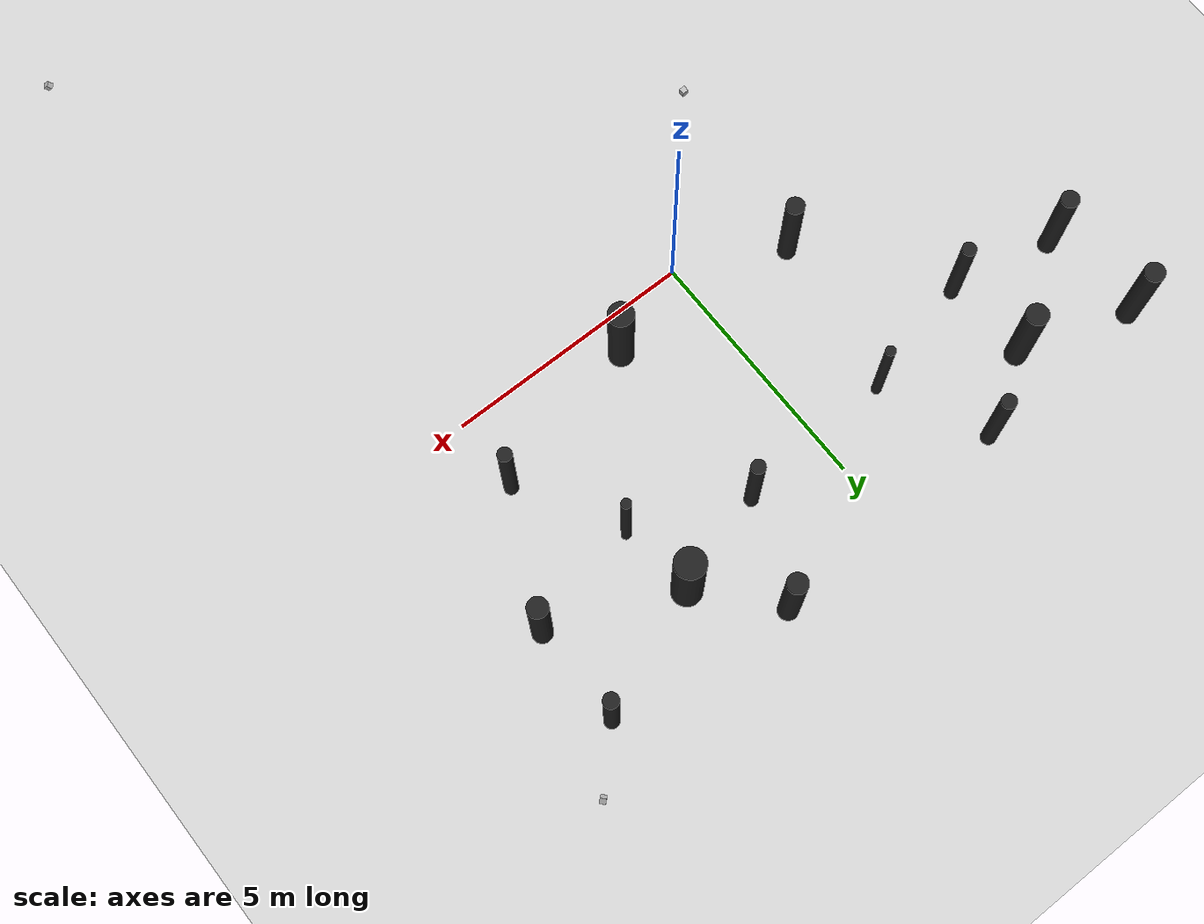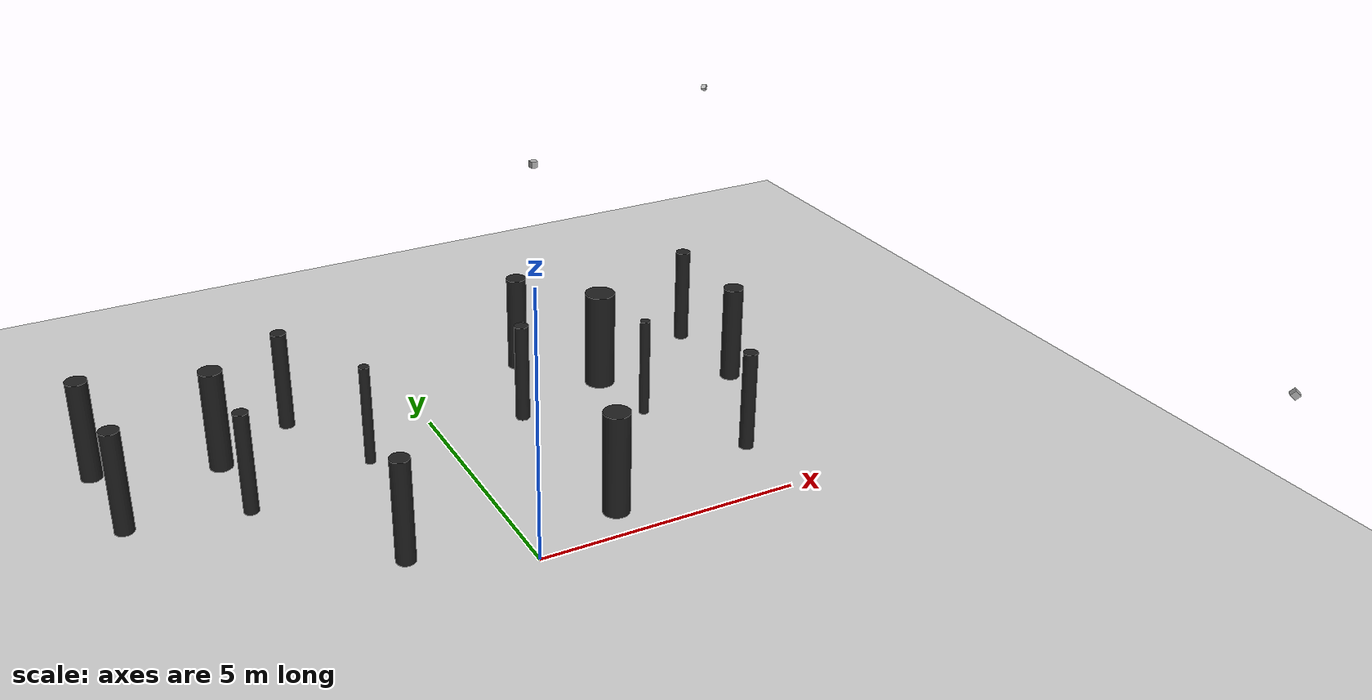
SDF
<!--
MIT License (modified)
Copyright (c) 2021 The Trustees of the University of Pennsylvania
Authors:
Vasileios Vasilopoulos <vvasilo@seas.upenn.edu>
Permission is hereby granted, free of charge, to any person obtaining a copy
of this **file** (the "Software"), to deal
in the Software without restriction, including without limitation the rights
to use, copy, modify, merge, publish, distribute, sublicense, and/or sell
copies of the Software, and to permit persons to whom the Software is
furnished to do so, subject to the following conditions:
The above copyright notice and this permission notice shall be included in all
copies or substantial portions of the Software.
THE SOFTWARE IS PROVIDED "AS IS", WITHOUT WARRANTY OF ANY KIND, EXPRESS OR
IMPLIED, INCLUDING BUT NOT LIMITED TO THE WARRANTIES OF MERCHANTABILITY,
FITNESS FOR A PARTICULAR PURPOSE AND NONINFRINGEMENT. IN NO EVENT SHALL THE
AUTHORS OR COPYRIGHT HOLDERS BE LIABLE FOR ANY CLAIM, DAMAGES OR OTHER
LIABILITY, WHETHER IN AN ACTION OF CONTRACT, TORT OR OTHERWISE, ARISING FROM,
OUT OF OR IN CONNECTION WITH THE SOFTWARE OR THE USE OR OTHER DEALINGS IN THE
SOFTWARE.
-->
<sdf version="1.6">
 <world name="default">
  <model name="ground_plane">
   <static>1</static>
   <link name="link">
    <collision name="collision">
     <geometry><plane><normal>0 0 1</normal><size>100 100</size></plane></geometry>
     <surface><friction><ode><mu>100</mu><mu2>50</mu2></ode></friction></surface>
    </collision>
    <visual name="visual">
     <cast_shadows>0</cast_shadows>
     <geometry><plane><normal>0 0 1</normal><size>100 100</size></plane></geometry>
     <material>
      <script><uri>file://media/materials/scripts/gazebo.material</uri><name>Gazebo/Grey</name></script>
     </material>
    </visual>
   </link>
  </model>
  <model name="cylinder_15">
   <link name="link_0">
    <pose>5 1.5 1 0 -0 0</pose>
    <visual name="visual">
     <geometry><cylinder><radius>0.14</radius><length>2</length></cylinder></geometry>
     <material>
      <lighting>1</lighting>
      <script><uri>file://media/materials/scripts/gazebo.material</uri><name>Gazebo/Black</name></script>
      <shader type="pixel"/>
     </material>
    </visual>
    <collision name="collision">
     <geometry><cylinder><radius>0.14</radius><length>2</length></cylinder></geometry>
    </collision>
   </link>
   <static>1</static>
  </model>
  <model name="cylinder_16">
   <link name="link_0">
    <pose>1.7 4.4 1 0 -0 0</pose>
    <visual name="visual">
     <geometry><cylinder><radius>0.14</radius><length>2</length></cylinder></geometry>
     <material>
      <lighting>1</lighting>
      <script><uri>file://media/materials/scripts/gazebo.material</uri><name>Gazebo/Black</name></script>
      <shader type="pixel"/>
     </material>
    </visual>
    <collision name="collision">
     <geometry><cylinder><radius>0.14</radius><length>2</length></cylinder></geometry>
    </collision>
   </link>
   <static>1</static>
  </model>
  <model name="cylinder_17">
   <link name="link_0">
    <pose>2.5 6.4 1 0 -0 0</pose>
    <visual name="visual">
     <geometry><cylinder><radius>0.2</radius><length>2</length></cylinder></geometry>
     <material>
      <lighting>1</lighting>
      <script><uri>file://media/materials/scripts/gazebo.material</uri><name>Gazebo/Black</name></script>
      <shader type="pixel"/>
     </material>
    </visual>
    <collision name="collision">
     <geometry><cylinder><radius>0.2</radius><length>2</length></cylinder></geometry>
    </collision>
   </link>
   <static>1</static>
  </model>
  <model name="cylinder_18">
   <link name="link_0">
    <pose>3.7 5 1 0 -0 0</pose>
    <visual name="visual">
     <geometry><cylinder><radius>0.3</radius><length>2</length></cylinder></geometry>
     <material>
      <lighting>1</lighting>
      <script><uri>file://media/materials/scripts/gazebo.material</uri><name>Gazebo/Black</name></script>
      <shader type="pixel"/>
     </material>
    </visual>
    <collision name="collision">
     <geometry><cylinder><radius>0.3</radius><length>2</length></cylinder></geometry>
    </collision>
   </link>
   <static>1</static>
  </model>
  <model name="cylinder_19">
   <link name="link_0">
    <pose>3.9 3.5 1 0 -0 0</pose>
    <visual name="visual">
     <geometry><cylinder><radius>0.1</radius><length>2</length></cylinder></geometry>
     <material>
      <lighting>1</lighting>
      <script><uri>file://media/materials/scripts/gazebo.material</uri><name>Gazebo/Black</name></script>
      <shader type="pixel"/>
     </material>
    </visual>
    <collision name="collision">
     <geometry><cylinder><radius>0.1</radius><length>2</length></cylinder></geometry>
    </collision>
   </link>
   <static>1</static>
  </model>
  <model name="cylinder_20">
   <link name="link_0">
    <pose>6.2 6 1 0 -0 0</pose>
    <visual name="visual">
     <geometry><cylinder><radius>0.15</radius><length>2</length></cylinder></geometry>
     <material>
      <lighting>1</lighting>
      <script><uri>file://media/materials/scripts/gazebo.material</uri><name>Gazebo/Black</name></script>
      <shader type="pixel"/>
     </material>
    </visual>
    <collision name="collision">
     <geometry><cylinder><radius>0.15</radius><length>2</length></cylinder></geometry>
    </collision>
   </link>
   <static>1</static>
  </model>
  <model name="cylinder_21">
   <link name="link_0">
    <pose>6.2 4 1 0 -0 0</pose>
    <visual name="visual">
     <geometry><cylinder><radius>0.2</radius><length>2</length></cylinder></geometry>
     <material>
      <lighting>1</lighting>
      <script><uri>file://media/materials/scripts/gazebo.material</uri><name>Gazebo/Black</name></script>
      <shader type="pixel"/>
     </material>
    </visual>
    <collision name="collision">
     <geometry><cylinder><radius>0.2</radius><length>2</length></cylinder></geometry>
    </collision>
   </link>
   <static>1</static>
  </model>
  <model name="cylinder_22">
   <link name="link_0">
    <pose>-1.5 4.2 1 0 -0 0</pose>
    <visual name="visual">
     <geometry><cylinder><radius>0.1</radius><length>2</length></cylinder></geometry>
     <material>
      <lighting>1</lighting>
      <script><uri>file://media/materials/scripts/gazebo.material</uri><name>Gazebo/Black</name></script>
      <shader type="pixel"/>
     </material>
    </visual>
    <collision name="collision">
     <geometry><cylinder><radius>0.1</radius><length>2</length></cylinder></geometry>
    </collision>
   </link>
   <static>1</static>
  </model>
  <model name="cylinder_23">
   <link name="link_0">
    <pose>-2.5 6.2 1 0 -0 0</pose>
    <visual name="visual">
     <geometry><cylinder><radius>0.15</radius><length>2</length></cylinder></geometry>
     <material>
      <lighting>1</lighting>
      <script><uri>file://media/materials/scripts/gazebo.material</uri><name>Gazebo/Black</name></script>
      <shader type="pixel"/>
     </material>
    </visual>
    <collision name="collision">
     <geometry><cylinder><radius>0.15</radius><length>2</length></cylinder></geometry>
    </collision>
   </link>
   <static>1</static>
  </model>
  <model name="cylinder_24">
   <link name="link_0">
    <pose>-4 5.3 1 0 -0 0</pose>
    <visual name="visual">
     <geometry><cylinder><radius>0.22</radius><length>2</length></cylinder></geometry>
     <material>
      <lighting>1</lighting>
      <script><uri>file://media/materials/scripts/gazebo.material</uri><name>Gazebo/Black</name></script>
      <shader type="pixel"/>
     </material>
    </visual>
    <collision name="collision">
     <geometry><cylinder><radius>0.22</radius><length>2</length></cylinder></geometry>
    </collision>
   </link>
   <static>1</static>
  </model>
  <model name="cylinder_25">
   <link name="link_0">
    <pose>-3.9 3.6 1 0 -0 0</pose>
    <visual name="visual">
     <geometry><cylinder><radius>0.14</radius><length>2</length></cylinder></geometry>
     <material>
      <lighting>1</lighting>
      <script><uri>file://media/materials/scripts/gazebo.material</uri><name>Gazebo/Black</name></script>
      <shader type="pixel"/>
     </material>
    </visual>
    <collision name="collision">
     <geometry><cylinder><radius>0.14</radius><length>2</length></cylinder></geometry>
    </collision>
   </link>
   <static>1</static>
  </model>
  <model name="cylinder_26">
   <link name="link_0">
    <pose>-6.2 6 1 0 -0 0</pose>
    <visual name="visual">
     <geometry><cylinder><radius>0.2</radius><length>2</length></cylinder></geometry>
     <material>
      <lighting>1</lighting>
      <script><uri>file://media/materials/scripts/gazebo.material</uri><name>Gazebo/Black</name></script>
      <shader type="pixel"/>
     </material>
    </visual>
    <collision name="collision">
     <geometry><cylinder><radius>0.2</radius><length>2</length></cylinder></geometry>
    </collision>
   </link>
   <static>1</static>
  </model>
  <model name="cylinder_27">
   <link name="link_0">
    <pose>-6 4 1 0 -0 0</pose>
    <visual name="visual">
     <geometry><cylinder><radius>0.18</radius><length>2</length></cylinder></geometry>
     <material>
      <lighting>1</lighting>
      <script><uri>file://media/materials/scripts/gazebo.material</uri><name>Gazebo/Black</name></script>
      <shader type="pixel"/>
     </material>
    </visual>
    <collision name="collision">
     <geometry><cylinder><radius>0.18</radius><length>2</length></cylinder></geometry>
    </collision>
   </link>
   <static>1</static>
  </model>
  <model name="cylinder_28">
   <link name="link_0">
    <pose>-2 1 1 0 -0 0</pose>
    <visual name="visual">
     <geometry><cylinder><radius>0.18</radius><length>2</length></cylinder></geometry>
     <material>
      <lighting>1</lighting>
      <script><uri>file://media/materials/scripts/gazebo.material</uri><name>Gazebo/Black</name></script>
      <shader type="pixel"/>
     </material>
    </visual>
    <collision name="collision">
     <geometry><cylinder><radius>0.18</radius><length>2</length></cylinder></geometry>
    </collision>
   </link>
   <static>1</static>
  </model>
  <model name="cylinder_29">
   <link name="link_0">
    <pose>1.8 0.7 1 0 -0 0</pose>
    <visual name="visual">
     <geometry><cylinder><radius>0.25</radius><length>2</length></cylinder></geometry>
     <material>
      <lighting>1</lighting>
      <script><uri>file://media/materials/scripts/gazebo.material</uri><name>Gazebo/Black</name></script>
      <shader type="pixel"/>
     </material>
    </visual>
    <collision name="collision">
     <geometry><cylinder><radius>0.25</radius><length>2</length></cylinder></geometry>
    </collision>
   </link>
   <static>1</static>
  </model>
  <model name="camera2">
   <static>true</static>
   <pose>7.5 -7.5 5 0 0.86 2.42</pose>
   <link name="link">
    <visual name="visual">
     <cast_shadows>0</cast_shadows>
     <geometry><box><size>0.1 0.1 0.1</size></box></geometry>
    </visual>
    <sensor name="my_camera" type="camera">
     <camera>
      <save enabled="true"><path>/home/kodlab/gazebo_camera_2</path></save>
      <horizontal_fov>1.5</horizontal_fov>
      <image><width>1920</width><height>1080</height></image>
      <clip><near>0.1</near><far>100</far></clip>
     </camera>
     <always_on>1</always_on>
     <update_rate>30</update_rate>
    </sensor>
   </link>
  </model>
  <model name="camera3">
   <static>true</static>
   <pose>7.5 7.5 5 0 0.86 -2.42</pose>
   <link name="link">
    <visual name="visual">
     <cast_shadows>0</cast_shadows>
     <geometry><box><size>0.1 0.1 0.1</size></box></geometry>
    </visual>
    <sensor name="my_camera" type="camera">
     <camera>
      <save enabled="true"><path>/home/kodlab/gazebo_camera_3</path></save>
      <horizontal_fov>1.5</horizontal_fov>
      <image><width>1920</width><height>1080</height></image>
      <clip><near>0.1</near><far>100</far></clip>
     </camera>
     <always_on>1</always_on>
     <update_rate>30</update_rate>
    </sensor>
   </link>
  </model>
  <model name="camera5">
   <static>true</static>
   <pose>0 0 7 0 1.57 0</pose>
   <link name="link">
    <visual name="visual">
     <cast_shadows>0</cast_shadows>
     <geometry><box><size>0.1 0.1 0.1</size></box></geometry>
    </visual>
    <sensor name="my_camera" type="camera">
     <camera>
      <save enabled="true"><path>/home/kodlab/gazebo_camera_5</path></save>
      <horizontal_fov>1.7</horizontal_fov>
      <image><width>1920</width><height>1920</height></image>
      <clip><near>0.1</near><far>100</far></clip>
     </camera>
     <always_on>1</always_on>
     <update_rate>30</update_rate>
    </sensor>
   </link>
  </model>
 </world>
</sdf>
